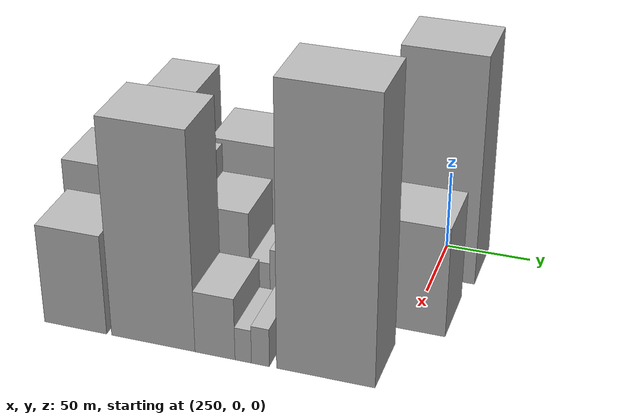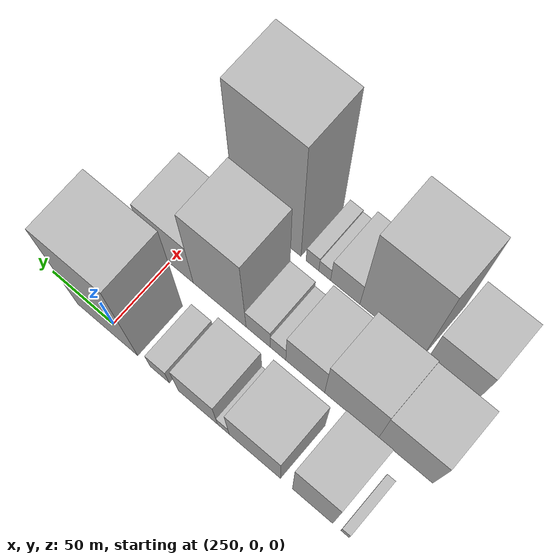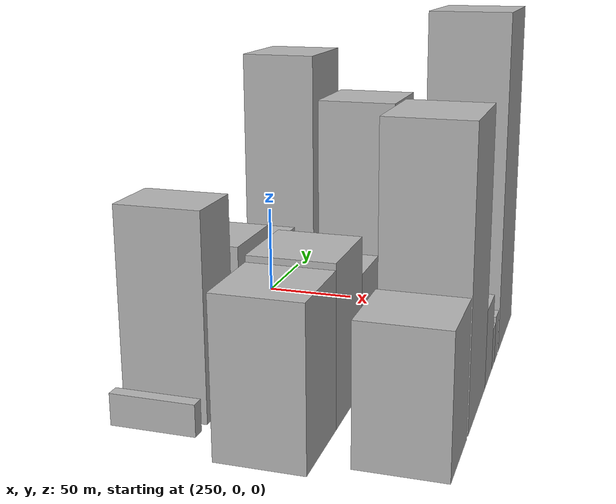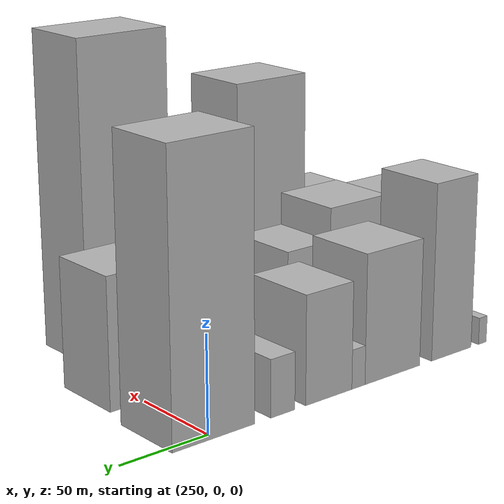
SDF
<sdf version="1.6">
 <world name="default">
  <model name="building_172">
   <static>1</static>
   <pose>265.0000 -183.9911 0 0.000000 0.000000 0.000000</pose>
   <link name="link">
    <pose>0 0 7.50 0 0 0</pose>
    <collision name="collision"><geometry><box><size>40.0000 6.1491 15.0000</size></box></geometry></collision>
    <visual name="visual">
     <cast_shadows>0</cast_shadows>
     <geometry><box><size>40.0000 6.1491 15.0000</size></box></geometry>
     <material>
      <script>
       <uri>model://HANNAS_wall/materials/scripts</uri>
       <uri>model://HANNAS_wall/materials/textures</uri>
       <name>vrc/HANNAS_wall</name>
      </script>
     </material>
    </visual>
   </link>
  </model>
  <model name="building_173">
   <static>1</static>
   <pose>265.0000 -159.7712 0 0.000000 0.000000 0.000000</pose>
   <link name="link">
    <pose>0 0 48.00 0 0 0</pose>
    <collision name="collision"><geometry><box><size>40.0000 30.2908 96.0000</size></box></geometry></collision>
    <visual name="visual">
     <cast_shadows>0</cast_shadows>
     <geometry><box><size>40.0000 30.2908 96.0000</size></box></geometry>
     <material>
      <script>
       <uri>model://HANNAS_wall/materials/scripts</uri>
       <uri>model://HANNAS_wall/materials/textures</uri>
       <name>vrc/HANNAS_wall</name>
      </script>
     </material>
    </visual>
   </link>
  </model>
  <model name="building_174">
   <static>1</static>
   <pose>265.0000 -116.0146 0 0.000000 0.000000 0.000000</pose>
   <link name="link">
    <pose>0 0 34.50 0 0 0</pose>
    <collision name="collision"><geometry><box><size>40.0000 39.2224 69.0000</size></box></geometry></collision>
    <visual name="visual">
     <cast_shadows>0</cast_shadows>
     <geometry><box><size>40.0000 39.2224 69.0000</size></box></geometry>
     <material>
      <script>
       <uri>model://HANNAS_wall/materials/scripts</uri>
       <uri>model://HANNAS_wall/materials/textures</uri>
       <name>vrc/HANNAS_wall</name>
      </script>
     </material>
    </visual>
   </link>
  </model>
  <model name="building_175">
   <static>1</static>
   <pose>265.0000 -91.8677 0 0.000000 0.000000 0.000000</pose>
   <link name="link">
    <pose>0 0 10.50 0 0 0</pose>
    <collision name="collision"><geometry><box><size>40.0000 9.0713 21.0000</size></box></geometry></collision>
    <visual name="visual">
     <cast_shadows>0</cast_shadows>
     <geometry><box><size>40.0000 9.0713 21.0000</size></box></geometry>
     <material>
      <script>
       <uri>model://HANNAS_wall/materials/scripts</uri>
       <uri>model://HANNAS_wall/materials/textures</uri>
       <name>vrc/HANNAS_wall</name>
      </script>
     </material>
    </visual>
   </link>
  </model>
  <model name="building_176">
   <static>1</static>
   <pose>265.0000 -71.9111 0 0.000000 0.000000 0.000000</pose>
   <link name="link">
    <pose>0 0 28.50 0 0 0</pose>
    <collision name="collision"><geometry><box><size>40.0000 30.8420 57.0000</size></box></geometry></collision>
    <visual name="visual">
     <cast_shadows>0</cast_shadows>
     <geometry><box><size>40.0000 30.8420 57.0000</size></box></geometry>
     <material>
      <script>
       <uri>model://HANNAS_wall/materials/scripts</uri>
       <uri>model://HANNAS_wall/materials/textures</uri>
       <name>vrc/HANNAS_wall</name>
      </script>
     </material>
    </visual>
   </link>
  </model>
  <model name="building_177">
   <static>1</static>
   <pose>265.0000 -41.8620 0 0.000000 0.000000 0.000000</pose>
   <link name="link">
    <pose>0 0 15.00 0 0 0</pose>
    <collision name="collision"><geometry><box><size>40.0000 15.2563 30.0000</size></box></geometry></collision>
    <visual name="visual">
     <cast_shadows>0</cast_shadows>
     <geometry><box><size>40.0000 15.2563 30.0000</size></box></geometry>
     <material>
      <script>
       <uri>model://HANNAS_wall/materials/scripts</uri>
       <uri>model://HANNAS_wall/materials/textures</uri>
       <name>vrc/HANNAS_wall</name>
      </script>
     </material>
    </visual>
   </link>
  </model>
  <model name="building_178">
   <static>1</static>
   <pose>265.0000 0.0882 0 0.000000 0.000000 0.000000</pose>
   <link name="link">
    <pose>0 0 72.00 0 0 0</pose>
    <collision name="collision"><geometry><box><size>40.0000 48.6441 144.0000</size></box></geometry></collision>
    <visual name="visual">
     <cast_shadows>0</cast_shadows>
     <geometry><box><size>40.0000 48.6441 144.0000</size></box></geometry>
     <material>
      <script>
       <uri>model://HANNAS_wall/materials/scripts</uri>
       <uri>model://HANNAS_wall/materials/textures</uri>
       <name>vrc/HANNAS_wall</name>
      </script>
     </material>
    </visual>
   </link>
  </model>
  <model name="building_229">
   <static>1</static>
   <pose>320.0000 -184.0367 0 0.000000 0.000000 0.000000</pose>
   <link name="link">
    <pose>0 0 36.00 0 0 0</pose>
    <collision name="collision"><geometry><box><size>40.0000 40.3605 72.0000</size></box></geometry></collision>
    <visual name="visual">
     <cast_shadows>0</cast_shadows>
     <geometry><box><size>40.0000 40.3605 72.0000</size></box></geometry>
     <material>
      <script>
       <uri>model://HANNAS_wall/materials/scripts</uri>
       <uri>model://HANNAS_wall/materials/textures</uri>
       <name>vrc/HANNAS_wall</name>
      </script>
     </material>
    </visual>
   </link>
  </model>
  <model name="building_230">
   <static>1</static>
   <pose>320.0000 -143.3285 0 0.000000 0.000000 0.000000</pose>
   <link name="link">
    <pose>0 0 37.50 0 0 0</pose>
    <collision name="collision"><geometry><box><size>40.0000 41.0558 75.0000</size></box></geometry></collision>
    <visual name="visual">
     <cast_shadows>0</cast_shadows>
     <geometry><box><size>40.0000 41.0558 75.0000</size></box></geometry>
     <material>
      <script>
       <uri>model://HANNAS_wall/materials/scripts</uri>
       <uri>model://HANNAS_wall/materials/textures</uri>
       <name>vrc/HANNAS_wall</name>
      </script>
     </material>
    </visual>
   </link>
  </model>
  <model name="building_231">
   <static>1</static>
   <pose>320.0000 -107.8401 0 0.000000 0.000000 0.000000</pose>
   <link name="link">
    <pose>0 0 28.50 0 0 0</pose>
    <collision name="collision"><geometry><box><size>40.0000 29.9210 57.0000</size></box></geometry></collision>
    <visual name="visual">
     <cast_shadows>0</cast_shadows>
     <geometry><box><size>40.0000 29.9210 57.0000</size></box></geometry>
     <material>
      <script>
       <uri>model://HANNAS_wall/materials/scripts</uri>
       <uri>model://HANNAS_wall/materials/textures</uri>
       <name>vrc/HANNAS_wall</name>
      </script>
     </material>
    </visual>
   </link>
  </model>
  <model name="building_232">
   <static>1</static>
   <pose>320.0000 -86.8398 0 0.000000 0.000000 0.000000</pose>
   <link name="link">
    <pose>0 0 13.50 0 0 0</pose>
    <collision name="collision"><geometry><box><size>40.0000 12.0794 27.0000</size></box></geometry></collision>
    <visual name="visual">
     <cast_shadows>0</cast_shadows>
     <geometry><box><size>40.0000 12.0794 27.0000</size></box></geometry>
     <material>
      <script>
       <uri>model://HANNAS_wall/materials/scripts</uri>
       <uri>model://HANNAS_wall/materials/textures</uri>
       <name>vrc/HANNAS_wall</name>
      </script>
     </material>
    </visual>
   </link>
  </model>
  <model name="building_233">
   <static>1</static>
   <pose>320.0000 -71.2586 0 0.000000 0.000000 0.000000</pose>
   <link name="link">
    <pose>0 0 18.00 0 0 0</pose>
    <collision name="collision"><geometry><box><size>40.0000 19.0831 36.0000</size></box></geometry></collision>
    <visual name="visual">
     <cast_shadows>0</cast_shadows>
     <geometry><box><size>40.0000 19.0831 36.0000</size></box></geometry>
     <material>
      <script>
       <uri>model://HANNAS_wall/materials/scripts</uri>
       <uri>model://HANNAS_wall/materials/textures</uri>
       <name>vrc/HANNAS_wall</name>
      </script>
     </material>
    </visual>
   </link>
  </model>
  <model name="building_234">
   <static>1</static>
   <pose>320.0000 -40.6106 0 0.000000 0.000000 0.000000</pose>
   <link name="link">
    <pose>0 0 63.00 0 0 0</pose>
    <collision name="collision"><geometry><box><size>40.0000 42.2128 126.0000</size></box></geometry></collision>
    <visual name="visual">
     <cast_shadows>0</cast_shadows>
     <geometry><box><size>40.0000 42.2128 126.0000</size></box></geometry>
     <material>
      <script>
       <uri>model://HANNAS_wall/materials/scripts</uri>
       <uri>model://HANNAS_wall/materials/textures</uri>
       <name>vrc/HANNAS_wall</name>
      </script>
     </material>
    </visual>
   </link>
  </model>
  <model name="building_235">
   <static>1</static>
   <pose>320.0000 0.3163 0 0.000000 0.000000 0.000000</pose>
   <link name="link">
    <pose>0 0 34.50 0 0 0</pose>
    <collision name="collision"><geometry><box><size>40.0000 39.6410 69.0000</size></box></geometry></collision>
    <visual name="visual">
     <cast_shadows>0</cast_shadows>
     <geometry><box><size>40.0000 39.6410 69.0000</size></box></geometry>
     <material>
      <script>
       <uri>model://HANNAS_wall/materials/scripts</uri>
       <uri>model://HANNAS_wall/materials/textures</uri>
       <name>vrc/HANNAS_wall</name>
      </script>
     </material>
    </visual>
   </link>
  </model>
  <model name="building_277">
   <static>1</static>
   <pose>375.0000 -175.0528 0 0.000000 0.000000 0.000000</pose>
   <link name="link">
    <pose>0 0 31.50 0 0 0</pose>
    <collision name="collision"><geometry><box><size>40.0000 37.4138 63.0000</size></box></geometry></collision>
    <visual name="visual">
     <cast_shadows>0</cast_shadows>
     <geometry><box><size>40.0000 37.4138 63.0000</size></box></geometry>
     <material>
      <script>
       <uri>model://HANNAS_wall/materials/scripts</uri>
       <uri>model://HANNAS_wall/materials/textures</uri>
       <name>vrc/HANNAS_wall</name>
      </script>
     </material>
    </visual>
   </link>
  </model>
  <model name="building_278">
   <static>1</static>
   <pose>375.0000 -128.8965 0 0.000000 0.000000 0.000000</pose>
   <link name="link">
    <pose>0 0 67.50 0 0 0</pose>
    <collision name="collision"><geometry><box><size>40.0000 48.8987 135.0000</size></box></geometry></collision>
    <visual name="visual">
     <cast_shadows>0</cast_shadows>
     <geometry><box><size>40.0000 48.8987 135.0000</size></box></geometry>
     <material>
      <script>
       <uri>model://HANNAS_wall/materials/scripts</uri>
       <uri>model://HANNAS_wall/materials/textures</uri>
       <name>vrc/HANNAS_wall</name>
      </script>
     </material>
    </visual>
   </link>
  </model>
  <model name="building_279">
   <static>1</static>
   <pose>375.0000 -92.9913 0 0.000000 0.000000 0.000000</pose>
   <link name="link">
    <pose>0 0 19.50 0 0 0</pose>
    <collision name="collision"><geometry><box><size>40.0000 22.9118 39.0000</size></box></geometry></collision>
    <visual name="visual">
     <cast_shadows>0</cast_shadows>
     <geometry><box><size>40.0000 22.9118 39.0000</size></box></geometry>
     <material>
      <script>
       <uri>model://HANNAS_wall/materials/scripts</uri>
       <uri>model://HANNAS_wall/materials/textures</uri>
       <name>vrc/HANNAS_wall</name>
      </script>
     </material>
    </visual>
   </link>
  </model>
  <model name="building_280">
   <static>1</static>
   <pose>375.0000 -76.8929 0 0.000000 0.000000 0.000000</pose>
   <link name="link">
    <pose>0 0 10.50 0 0 0</pose>
    <collision name="collision"><geometry><box><size>40.0000 9.2851 21.0000</size></box></geometry></collision>
    <visual name="visual">
     <cast_shadows>0</cast_shadows>
     <geometry><box><size>40.0000 9.2851 21.0000</size></box></geometry>
     <material>
      <script>
       <uri>model://HANNAS_wall/materials/scripts</uri>
       <uri>model://HANNAS_wall/materials/textures</uri>
       <name>vrc/HANNAS_wall</name>
      </script>
     </material>
    </visual>
   </link>
  </model>
  <model name="building_281">
   <static>1</static>
   <pose>375.0000 -67.1995 0 0.000000 0.000000 0.000000</pose>
   <link name="link">
    <pose>0 0 12.00 0 0 0</pose>
    <collision name="collision"><geometry><box><size>40.0000 10.1016 24.0000</size></box></geometry></collision>
    <visual name="visual">
     <cast_shadows>0</cast_shadows>
     <geometry><box><size>40.0000 10.1016 24.0000</size></box></geometry>
     <material>
      <script>
       <uri>model://HANNAS_wall/materials/scripts</uri>
       <uri>model://HANNAS_wall/materials/textures</uri>
       <name>vrc/HANNAS_wall</name>
      </script>
     </material>
    </visual>
   </link>
  </model>
  <model name="building_282">
   <static>1</static>
   <pose>375.0000 -31.0956 0 0.000000 0.000000 0.000000</pose>
   <link name="link">
    <pose>0 0 85.50 0 0 0</pose>
    <collision name="collision"><geometry><box><size>40.0000 54.1062 171.0000</size></box></geometry></collision>
    <visual name="visual">
     <cast_shadows>0</cast_shadows>
     <geometry><box><size>40.0000 54.1062 171.0000</size></box></geometry>
     <material>
      <script>
       <uri>model://HANNAS_wall/materials/scripts</uri>
       <uri>model://HANNAS_wall/materials/textures</uri>
       <name>vrc/HANNAS_wall</name>
      </script>
     </material>
    </visual>
   </link>
  </model>
 </world>
</sdf>
